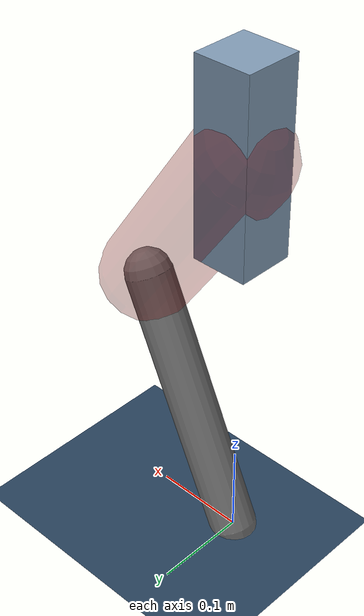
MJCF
<mujoco model="Hopper2D">
	<compiler inertiafromgeom="true" angle="radian" />
	<option timestep="0.001" integrator="implicit" cone="elliptic" solver="Newton" tolerance="1e-10" />

	<default>
		<geom contype="1" conaffinity="1" condim="3" friction="2 0.005 0.0001" solref="0.005 1" />
		<joint limited="true" damping="0.1" />
	</default>

	<asset>
		<texture name="skybox" type="skybox" builtin="gradient" rgb1=".4 .6 .8" rgb2="0 0 0" width="800" height="800" />
		<texture name="grid" type="2d" builtin="checker" rgb1=".1 .2 .3" rgb2=".2 .3 .4" width="300" height="300" mark="edge" markrgb=".2 .3 .4" />
		<material name="ground" texture="grid" texrepeat="1 1" texuniform="true" reflectance="0.1" />
		<material name="leg" rgba="0.5 0.6 0.7 1" />
	</asset>

	<worldbody>

		<geom name="floor" type="plane" size="5 5 0.25" material="ground" />

		<light directional="false" diffuse="0.8 0.8 0.8" specular="0.3 0.3 0.3" pos="0 0 2" dir="0 0 -1" />
		<light mode="targetbodycom" target="base" directional="false" diffuse="0.8 0.8 0.8" specular="0.3 0.3 0.3" pos="0 0 2" dir="0 0 -1" />

		<camera name="fixed" pos="0 -2 1" xyaxes="1 0 0 0 0 1" />
		<camera name="tracking" mode="trackcom" pos="0 -3 1" />

		<body name="root" pos="0 0 0.44293789358138635">
			<joint name="slide_x" type="slide" axis="1 0 0" range="-100 100" />
			<joint name="slide_z" type="slide" axis="0 0 1" range="0 10" />

			<body name="base" pos="0 0 0">
				<geom name="torso" type="box" size="0.03 0.03 0.1" mass="2.734" material="leg" />

				<body name="link1" pos="0 0 0" euler="0 0.9645349232705508 0">
					<joint type="hinge" axis="0 -1 0" pos="0 0 0" name="hinge1" limited="true" range="-3.14 3.14" stiffness="0" damping="0.1" />
					<geom name="thigh" type="capsule" fromto="0 0 0 0.21137964082556393 0 0" size="0.05" rgba="0.5 0 0 0.3" mass="0.7579870661464663" />

					<body name="link2" pos="0.21137964082556393 0 0" euler="0 1.0269221702887552 0">
						<joint type="hinge" axis="0 -1 0" pos="0 0 0" name="hinge2" limited="true" range="-3.14 3.14" stiffness="0" damping="0.1" />
						<geom name="shank" type="capsule" fromto="0 0 0 0.29494280398379025 0 0" size="0.025" mass="0.47934852358541125" />

					</body>
				</body>
			</body>
		</body>
	</worldbody>

	<actuator>
		<motor name="torque1" joint="hinge1" ctrlrange="-65.63226258859086 65.63226258859086" ctrllimited="true" gear="1" />
		<motor name="torque2" joint="hinge2" ctrlrange="-22.085176909150373 22.085176909150373" ctrllimited="true" gear="1" />
	</actuator>
</mujoco>
